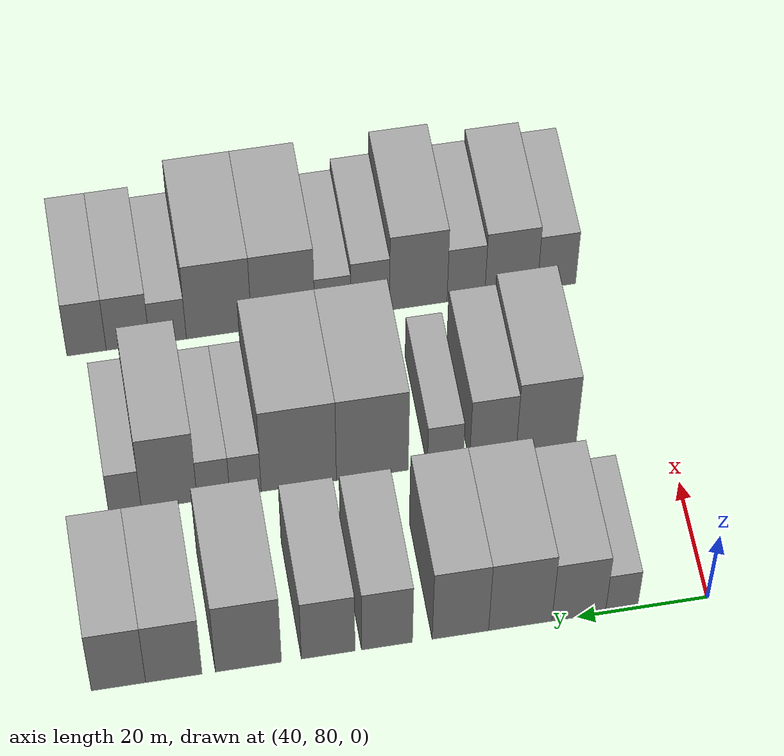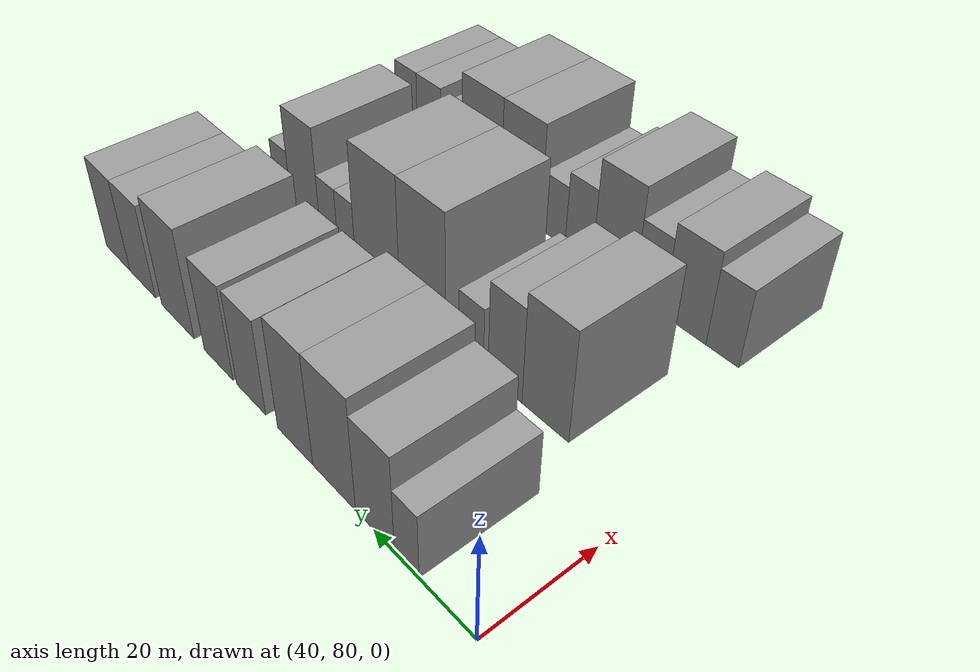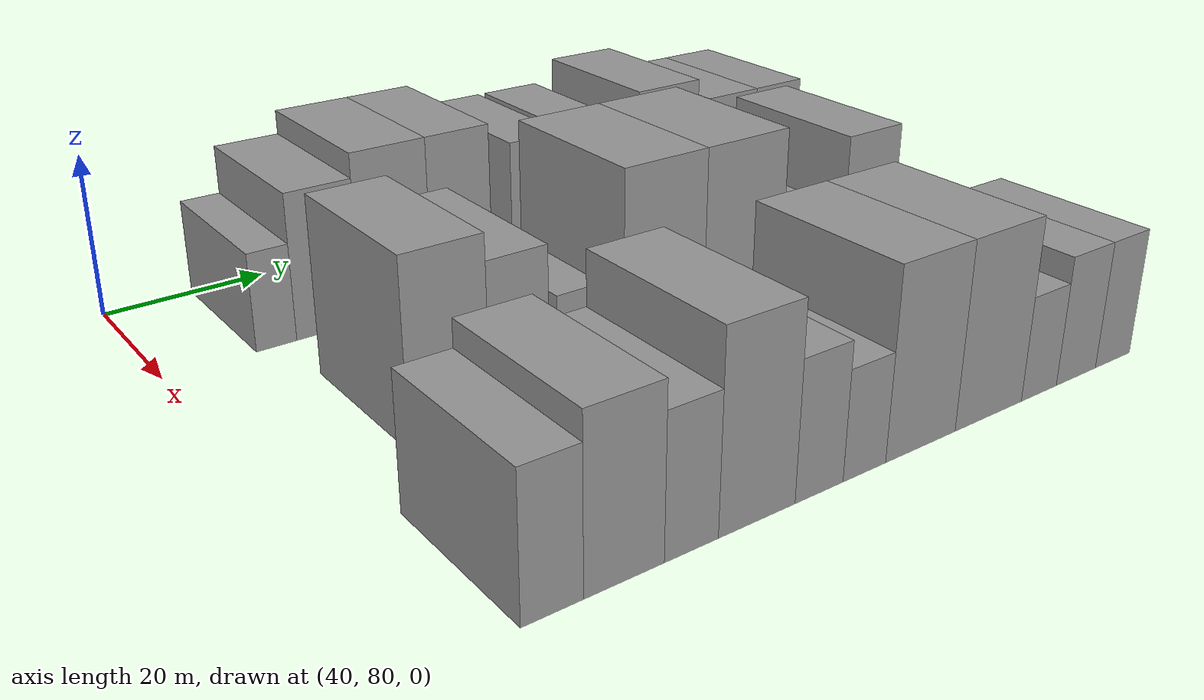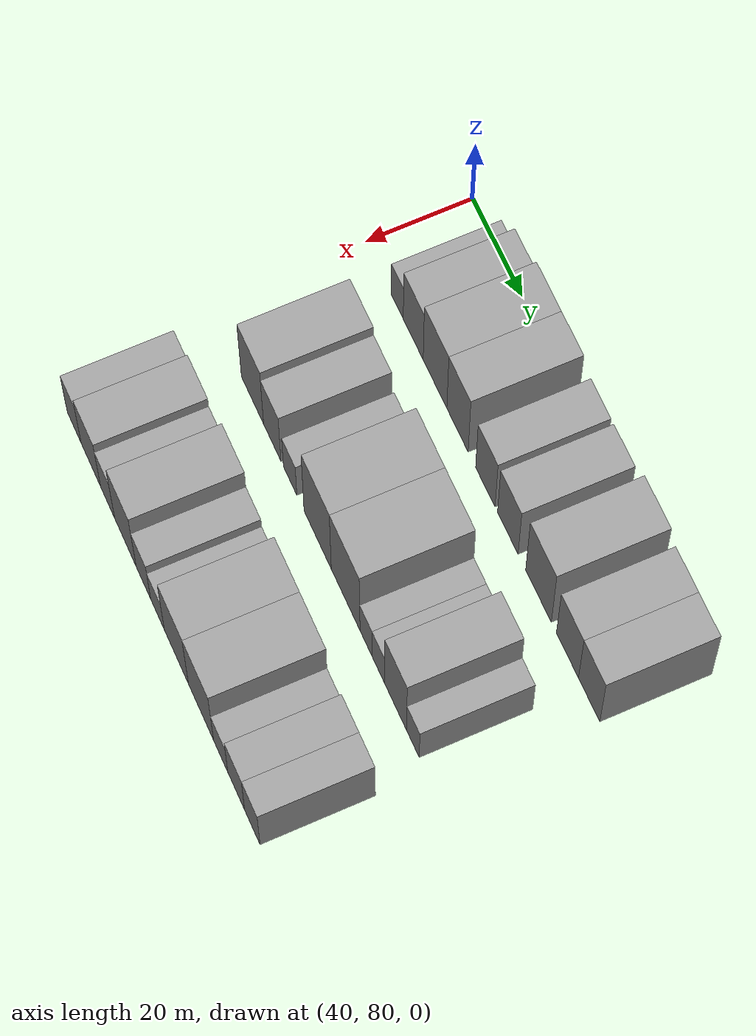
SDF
<sdf version="1.6">
 <world name="default">
  <model name="building_50">
   <static>1</static>
   <pose>50.0000 93.2761 0 0.000000 0.000000 0.000000</pose>
   <link name="link">
    <pose>0 0 6.00 0 0 0</pose>
    <collision name="collision"><geometry><box><size>20.0000 4.9065 12.0000</size></box></geometry></collision>
    <visual name="visual">
     <cast_shadows>0</cast_shadows>
     <geometry><box><size>20.0000 4.9065 12.0000</size></box></geometry>
     <material>
      <script>
       <uri>model://grey_wall/materials/scripts</uri>
       <uri>model://grey_wall/materials/textures</uri>
       <name>vrc/grey_wall</name>
      </script>
     </material>
    </visual>
   </link>
  </model>
  <model name="building_51">
   <static>1</static>
   <pose>50.0000 99.8222 0 0.000000 0.000000 0.000000</pose>
   <link name="link">
    <pose>0 0 9.00 0 0 0</pose>
    <collision name="collision"><geometry><box><size>20.0000 8.1858 18.0000</size></box></geometry></collision>
    <visual name="visual">
     <cast_shadows>0</cast_shadows>
     <geometry><box><size>20.0000 8.1858 18.0000</size></box></geometry>
     <material>
      <script>
       <uri>model://grey_wall/materials/scripts</uri>
       <uri>model://grey_wall/materials/textures</uri>
       <name>vrc/grey_wall</name>
      </script>
     </material>
    </visual>
   </link>
  </model>
  <model name="building_52">
   <static>1</static>
   <pose>50.0000 108.7448 0 0.000000 0.000000 0.000000</pose>
   <link name="link">
    <pose>0 0 10.50 0 0 0</pose>
    <collision name="collision"><geometry><box><size>20.0000 9.6593 21.0000</size></box></geometry></collision>
    <visual name="visual">
     <cast_shadows>0</cast_shadows>
     <geometry><box><size>20.0000 9.6593 21.0000</size></box></geometry>
     <material>
      <script>
       <uri>model://grey_wall/materials/scripts</uri>
       <uri>model://grey_wall/materials/textures</uri>
       <name>vrc/grey_wall</name>
      </script>
     </material>
    </visual>
   </link>
  </model>
  <model name="building_53">
   <static>1</static>
   <pose>50.0000 117.8718 0 0.000000 0.000000 0.000000</pose>
   <link name="link">
    <pose>0 0 10.50 0 0 0</pose>
    <collision name="collision"><geometry><box><size>20.0000 8.5948 21.0000</size></box></geometry></collision>
    <visual name="visual">
     <cast_shadows>0</cast_shadows>
     <geometry><box><size>20.0000 8.5948 21.0000</size></box></geometry>
     <material>
      <script>
       <uri>model://grey_wall/materials/scripts</uri>
       <uri>model://grey_wall/materials/textures</uri>
       <name>vrc/grey_wall</name>
      </script>
     </material>
    </visual>
   </link>
  </model>
  <model name="building_54">
   <static>1</static>
   <pose>50.0000 129.0244 0 0.000000 0.000000 0.000000</pose>
   <link name="link">
    <pose>0 0 9.00 0 0 0</pose>
    <collision name="collision"><geometry><box><size>20.0000 7.7103 18.0000</size></box></geometry></collision>
    <visual name="visual">
     <cast_shadows>0</cast_shadows>
     <geometry><box><size>20.0000 7.7103 18.0000</size></box></geometry>
     <material>
      <script>
       <uri>model://grey_wall/materials/scripts</uri>
       <uri>model://grey_wall/materials/textures</uri>
       <name>vrc/grey_wall</name>
      </script>
     </material>
    </visual>
   </link>
  </model>
  <model name="building_55">
   <static>1</static>
   <pose>50.0000 137.9267 0 0.000000 0.000000 0.000000</pose>
   <link name="link">
    <pose>0 0 9.00 0 0 0</pose>
    <collision name="collision"><geometry><box><size>20.0000 8.0942 18.0000</size></box></geometry></collision>
    <visual name="visual">
     <cast_shadows>0</cast_shadows>
     <geometry><box><size>20.0000 8.0942 18.0000</size></box></geometry>
     <material>
      <script>
       <uri>model://grey_wall/materials/scripts</uri>
       <uri>model://grey_wall/materials/textures</uri>
       <name>vrc/grey_wall</name>
      </script>
     </material>
    </visual>
   </link>
  </model>
  <model name="building_56">
   <static>1</static>
   <pose>50.0000 149.9469 0 0.000000 0.000000 0.000000</pose>
   <link name="link">
    <pose>0 0 10.50 0 0 0</pose>
    <collision name="collision"><geometry><box><size>20.0000 9.9464 21.0000</size></box></geometry></collision>
    <visual name="visual">
     <cast_shadows>0</cast_shadows>
     <geometry><box><size>20.0000 9.9464 21.0000</size></box></geometry>
     <material>
      <script>
       <uri>model://grey_wall/materials/scripts</uri>
       <uri>model://grey_wall/materials/textures</uri>
       <name>vrc/grey_wall</name>
      </script>
     </material>
    </visual>
   </link>
  </model>
  <model name="building_57">
   <static>1</static>
   <pose>50.0000 161.1456 0 0.000000 0.000000 0.000000</pose>
   <link name="link">
    <pose>0 0 9.00 0 0 0</pose>
    <collision name="collision"><geometry><box><size>20.0000 8.4509 18.0000</size></box></geometry></collision>
    <visual name="visual">
     <cast_shadows>0</cast_shadows>
     <geometry><box><size>20.0000 8.4509 18.0000</size></box></geometry>
     <material>
      <script>
       <uri>model://grey_wall/materials/scripts</uri>
       <uri>model://grey_wall/materials/textures</uri>
       <name>vrc/grey_wall</name>
      </script>
     </material>
    </visual>
   </link>
  </model>
  <model name="building_58">
   <static>1</static>
   <pose>50.0000 169.4315 0 0.000000 0.000000 0.000000</pose>
   <link name="link">
    <pose>0 0 9.00 0 0 0</pose>
    <collision name="collision"><geometry><box><size>20.0000 8.1209 18.0000</size></box></geometry></collision>
    <visual name="visual">
     <cast_shadows>0</cast_shadows>
     <geometry><box><size>20.0000 8.1209 18.0000</size></box></geometry>
     <material>
      <script>
       <uri>model://grey_wall/materials/scripts</uri>
       <uri>model://grey_wall/materials/textures</uri>
       <name>vrc/grey_wall</name>
      </script>
     </material>
    </visual>
   </link>
  </model>
  <model name="building_125">
   <static>1</static>
   <pose>79.0000 99.1601 0 0.000000 0.000000 0.000000</pose>
   <link name="link">
    <pose>0 0 10.50 0 0 0</pose>
    <collision name="collision"><geometry><box><size>20.0000 9.4269 21.0000</size></box></geometry></collision>
    <visual name="visual">
     <cast_shadows>0</cast_shadows>
     <geometry><box><size>20.0000 9.4269 21.0000</size></box></geometry>
     <material>
      <script>
       <uri>model://grey_wall/materials/scripts</uri>
       <uri>model://grey_wall/materials/textures</uri>
       <name>vrc/grey_wall</name>
      </script>
     </material>
    </visual>
   </link>
  </model>
  <model name="building_126">
   <static>1</static>
   <pose>79.0000 107.5275 0 0.000000 0.000000 0.000000</pose>
   <link name="link">
    <pose>0 0 9.00 0 0 0</pose>
    <collision name="collision"><geometry><box><size>20.0000 7.3079 18.0000</size></box></geometry></collision>
    <visual name="visual">
     <cast_shadows>0</cast_shadows>
     <geometry><box><size>20.0000 7.3079 18.0000</size></box></geometry>
     <material>
      <script>
       <uri>model://grey_wall/materials/scripts</uri>
       <uri>model://grey_wall/materials/textures</uri>
       <name>vrc/grey_wall</name>
      </script>
     </material>
    </visual>
   </link>
  </model>
  <model name="building_127">
   <static>1</static>
   <pose>79.0000 114.9873 0 0.000000 0.000000 0.000000</pose>
   <link name="link">
    <pose>0 0 6.00 0 0 0</pose>
    <collision name="collision"><geometry><box><size>20.0000 5.6117 12.0000</size></box></geometry></collision>
    <visual name="visual">
     <cast_shadows>0</cast_shadows>
     <geometry><box><size>20.0000 5.6117 12.0000</size></box></geometry>
     <material>
      <script>
       <uri>model://grey_wall/materials/scripts</uri>
       <uri>model://grey_wall/materials/textures</uri>
       <name>vrc/grey_wall</name>
      </script>
     </material>
    </visual>
   </link>
  </model>
  <model name="building_128">
   <static>1</static>
   <pose>79.0000 126.3923 0 0.000000 0.000000 0.000000</pose>
   <link name="link">
    <pose>0 0 12.00 0 0 0</pose>
    <collision name="collision"><geometry><box><size>20.0000 11.1982 24.0000</size></box></geometry></collision>
    <visual name="visual">
     <cast_shadows>0</cast_shadows>
     <geometry><box><size>20.0000 11.1982 24.0000</size></box></geometry>
     <material>
      <script>
       <uri>model://grey_wall/materials/scripts</uri>
       <uri>model://grey_wall/materials/textures</uri>
       <name>vrc/grey_wall</name>
      </script>
     </material>
    </visual>
   </link>
  </model>
  <model name="building_129">
   <static>1</static>
   <pose>79.0000 137.8387 0 0.000000 0.000000 0.000000</pose>
   <link name="link">
    <pose>0 0 12.00 0 0 0</pose>
    <collision name="collision"><geometry><box><size>20.0000 11.6948 24.0000</size></box></geometry></collision>
    <visual name="visual">
     <cast_shadows>0</cast_shadows>
     <geometry><box><size>20.0000 11.6948 24.0000</size></box></geometry>
     <material>
      <script>
       <uri>model://grey_wall/materials/scripts</uri>
       <uri>model://grey_wall/materials/textures</uri>
       <name>vrc/grey_wall</name>
      </script>
     </material>
    </visual>
   </link>
  </model>
  <model name="building_130">
   <static>1</static>
   <pose>79.0000 146.1227 0 0.000000 0.000000 0.000000</pose>
   <link name="link">
    <pose>0 0 6.00 0 0 0</pose>
    <collision name="collision"><geometry><box><size>20.0000 4.8731 12.0000</size></box></geometry></collision>
    <visual name="visual">
     <cast_shadows>0</cast_shadows>
     <geometry><box><size>20.0000 4.8731 12.0000</size></box></geometry>
     <material>
      <script>
       <uri>model://grey_wall/materials/scripts</uri>
       <uri>model://grey_wall/materials/textures</uri>
       <name>vrc/grey_wall</name>
      </script>
     </material>
    </visual>
   </link>
  </model>
  <model name="building_131">
   <static>1</static>
   <pose>79.0000 151.0796 0 0.000000 0.000000 0.000000</pose>
   <link name="link">
    <pose>0 0 6.00 0 0 0</pose>
    <collision name="collision"><geometry><box><size>20.0000 5.0407 12.0000</size></box></geometry></collision>
    <visual name="visual">
     <cast_shadows>0</cast_shadows>
     <geometry><box><size>20.0000 5.0407 12.0000</size></box></geometry>
     <material>
      <script>
       <uri>model://grey_wall/materials/scripts</uri>
       <uri>model://grey_wall/materials/textures</uri>
       <name>vrc/grey_wall</name>
      </script>
     </material>
    </visual>
   </link>
  </model>
  <model name="building_132">
   <static>1</static>
   <pose>79.0000 157.9130 0 0.000000 0.000000 0.000000</pose>
   <link name="link">
    <pose>0 0 10.50 0 0 0</pose>
    <collision name="collision"><geometry><box><size>20.0000 8.6260 21.0000</size></box></geometry></collision>
    <visual name="visual">
     <cast_shadows>0</cast_shadows>
     <geometry><box><size>20.0000 8.6260 21.0000</size></box></geometry>
     <material>
      <script>
       <uri>model://grey_wall/materials/scripts</uri>
       <uri>model://grey_wall/materials/textures</uri>
       <name>vrc/grey_wall</name>
      </script>
     </material>
    </visual>
   </link>
  </model>
  <model name="building_133">
   <static>1</static>
   <pose>79.0000 164.7333 0 0.000000 0.000000 0.000000</pose>
   <link name="link">
    <pose>0 0 6.00 0 0 0</pose>
    <collision name="collision"><geometry><box><size>20.0000 5.0146 12.0000</size></box></geometry></collision>
    <visual name="visual">
     <cast_shadows>0</cast_shadows>
     <geometry><box><size>20.0000 5.0146 12.0000</size></box></geometry>
     <material>
      <script>
       <uri>model://grey_wall/materials/scripts</uri>
       <uri>model://grey_wall/materials/textures</uri>
       <name>vrc/grey_wall</name>
      </script>
     </material>
    </visual>
   </link>
  </model>
  <model name="building_202">
   <static>1</static>
   <pose>108.0000 91.7847 0 0.000000 0.000000 0.000000</pose>
   <link name="link">
    <pose>0 0 7.50 0 0 0</pose>
    <collision name="collision"><geometry><box><size>20.0000 6.2153 15.0000</size></box></geometry></collision>
    <visual name="visual">
     <cast_shadows>0</cast_shadows>
     <geometry><box><size>20.0000 6.2153 15.0000</size></box></geometry>
     <material>
      <script>
       <uri>model://grey_wall/materials/scripts</uri>
       <uri>model://grey_wall/materials/textures</uri>
       <name>vrc/grey_wall</name>
      </script>
     </material>
    </visual>
   </link>
  </model>
  <model name="building_203">
   <static>1</static>
   <pose>108.0000 99.1477 0 0.000000 0.000000 0.000000</pose>
   <link name="link">
    <pose>0 0 9.00 0 0 0</pose>
    <collision name="collision"><geometry><box><size>20.0000 8.5109 18.0000</size></box></geometry></collision>
    <visual name="visual">
     <cast_shadows>0</cast_shadows>
     <geometry><box><size>20.0000 8.5109 18.0000</size></box></geometry>
     <material>
      <script>
       <uri>model://grey_wall/materials/scripts</uri>
       <uri>model://grey_wall/materials/textures</uri>
       <name>vrc/grey_wall</name>
      </script>
     </material>
    </visual>
   </link>
  </model>
  <model name="building_204">
   <static>1</static>
   <pose>108.0000 106.4543 0 0.000000 0.000000 0.000000</pose>
   <link name="link">
    <pose>0 0 7.50 0 0 0</pose>
    <collision name="collision"><geometry><box><size>20.0000 6.1023 15.0000</size></box></geometry></collision>
    <visual name="visual">
     <cast_shadows>0</cast_shadows>
     <geometry><box><size>20.0000 6.1023 15.0000</size></box></geometry>
     <material>
      <script>
       <uri>model://grey_wall/materials/scripts</uri>
       <uri>model://grey_wall/materials/textures</uri>
       <name>vrc/grey_wall</name>
      </script>
     </material>
    </visual>
   </link>
  </model>
  <model name="building_205">
   <static>1</static>
   <pose>108.0000 114.1404 0 0.000000 0.000000 0.000000</pose>
   <link name="link">
    <pose>0 0 10.50 0 0 0</pose>
    <collision name="collision"><geometry><box><size>20.0000 9.2699 21.0000</size></box></geometry></collision>
    <visual name="visual">
     <cast_shadows>0</cast_shadows>
     <geometry><box><size>20.0000 9.2699 21.0000</size></box></geometry>
     <material>
      <script>
       <uri>model://grey_wall/materials/scripts</uri>
       <uri>model://grey_wall/materials/textures</uri>
       <name>vrc/grey_wall</name>
      </script>
     </material>
    </visual>
   </link>
  </model>
  <model name="building_206">
   <static>1</static>
   <pose>108.0000 121.8773 0 0.000000 0.000000 0.000000</pose>
   <link name="link">
    <pose>0 0 7.50 0 0 0</pose>
    <collision name="collision"><geometry><box><size>20.0000 6.2038 15.0000</size></box></geometry></collision>
    <visual name="visual">
     <cast_shadows>0</cast_shadows>
     <geometry><box><size>20.0000 6.2038 15.0000</size></box></geometry>
     <material>
      <script>
       <uri>model://grey_wall/materials/scripts</uri>
       <uri>model://grey_wall/materials/textures</uri>
       <name>vrc/grey_wall</name>
      </script>
     </material>
    </visual>
   </link>
  </model>
  <model name="building_207">
   <static>1</static>
   <pose>108.0000 127.8765 0 0.000000 0.000000 0.000000</pose>
   <link name="link">
    <pose>0 0 6.00 0 0 0</pose>
    <collision name="collision"><geometry><box><size>20.0000 5.7945 12.0000</size></box></geometry></collision>
    <visual name="visual">
     <cast_shadows>0</cast_shadows>
     <geometry><box><size>20.0000 5.7945 12.0000</size></box></geometry>
     <material>
      <script>
       <uri>model://grey_wall/materials/scripts</uri>
       <uri>model://grey_wall/materials/textures</uri>
       <name>vrc/grey_wall</name>
      </script>
     </material>
    </visual>
   </link>
  </model>
  <model name="building_208">
   <static>1</static>
   <pose>108.0000 135.8157 0 0.000000 0.000000 0.000000</pose>
   <link name="link">
    <pose>0 0 10.50 0 0 0</pose>
    <collision name="collision"><geometry><box><size>20.0000 10.0839 21.0000</size></box></geometry></collision>
    <visual name="visual">
     <cast_shadows>0</cast_shadows>
     <geometry><box><size>20.0000 10.0839 21.0000</size></box></geometry>
     <material>
      <script>
       <uri>model://grey_wall/materials/scripts</uri>
       <uri>model://grey_wall/materials/textures</uri>
       <name>vrc/grey_wall</name>
      </script>
     </material>
    </visual>
   </link>
  </model>
  <model name="building_209">
   <static>1</static>
   <pose>108.0000 146.0734 0 0.000000 0.000000 0.000000</pose>
   <link name="link">
    <pose>0 0 10.50 0 0 0</pose>
    <collision name="collision"><geometry><box><size>20.0000 10.4314 21.0000</size></box></geometry></collision>
    <visual name="visual">
     <cast_shadows>0</cast_shadows>
     <geometry><box><size>20.0000 10.4314 21.0000</size></box></geometry>
     <material>
      <script>
       <uri>model://grey_wall/materials/scripts</uri>
       <uri>model://grey_wall/materials/textures</uri>
       <name>vrc/grey_wall</name>
      </script>
     </material>
    </visual>
   </link>
  </model>
  <model name="building_210">
   <static>1</static>
   <pose>108.0000 154.2182 0 0.000000 0.000000 0.000000</pose>
   <link name="link">
    <pose>0 0 6.00 0 0 0</pose>
    <collision name="collision"><geometry><box><size>20.0000 5.8583 12.0000</size></box></geometry></collision>
    <visual name="visual">
     <cast_shadows>0</cast_shadows>
     <geometry><box><size>20.0000 5.8583 12.0000</size></box></geometry>
     <material>
      <script>
       <uri>model://grey_wall/materials/scripts</uri>
       <uri>model://grey_wall/materials/textures</uri>
       <name>vrc/grey_wall</name>
      </script>
     </material>
    </visual>
   </link>
  </model>
  <model name="building_211">
   <static>1</static>
   <pose>108.0000 160.5787 0 0.000000 0.000000 0.000000</pose>
   <link name="link">
    <pose>0 0 7.50 0 0 0</pose>
    <collision name="collision"><geometry><box><size>20.0000 6.8627 15.0000</size></box></geometry></collision>
    <visual name="visual">
     <cast_shadows>0</cast_shadows>
     <geometry><box><size>20.0000 6.8627 15.0000</size></box></geometry>
     <material>
      <script>
       <uri>model://grey_wall/materials/scripts</uri>
       <uri>model://grey_wall/materials/textures</uri>
       <name>vrc/grey_wall</name>
      </script>
     </material>
    </visual>
   </link>
  </model>
  <model name="building_212">
   <static>1</static>
   <pose>108.0000 167.1278 0 0.000000 0.000000 0.000000</pose>
   <link name="link">
    <pose>0 0 7.50 0 0 0</pose>
    <collision name="collision"><geometry><box><size>20.0000 6.2354 15.0000</size></box></geometry></collision>
    <visual name="visual">
     <cast_shadows>0</cast_shadows>
     <geometry><box><size>20.0000 6.2354 15.0000</size></box></geometry>
     <material>
      <script>
       <uri>model://grey_wall/materials/scripts</uri>
       <uri>model://grey_wall/materials/textures</uri>
       <name>vrc/grey_wall</name>
      </script>
     </material>
    </visual>
   </link>
  </model>
 </world>
</sdf>
